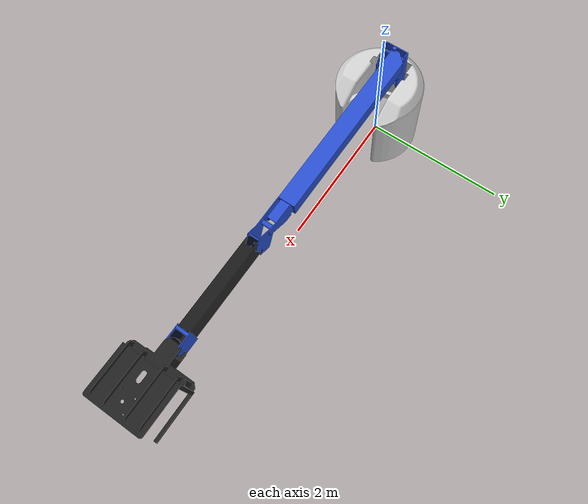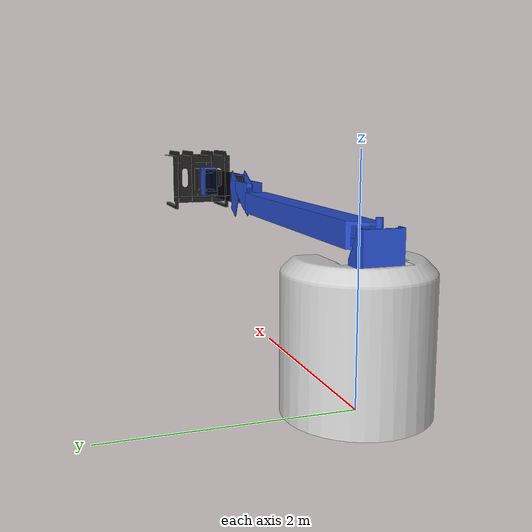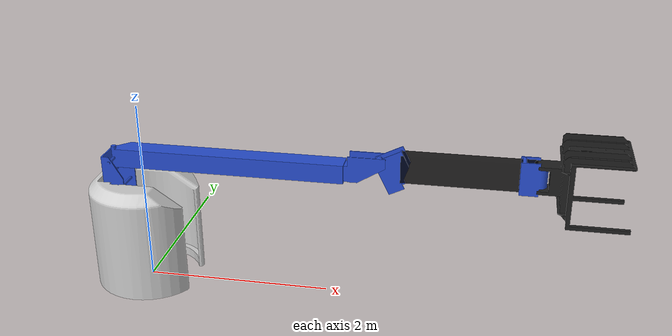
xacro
<?xml version="1.0"?>
<robot name="robospect" xmlns:xacro="http://www.ros.org/wiki/xacro">

	<!-- Imported elements -->

	<!-- First we import all posible elements defined in the urdf.xacro files. All these elements are defined as macro:xacros -->

	<!-- Import Robospect Crane -->
	<xacro:include filename="$(find robospect_description)/urdf/bases/robospect_crane.urdf.xacro" />
	<link name="base_footprint">
	  <visual>
		  <origin xyz="0 0 0" rpy="0 0 0" />
		  <geometry>
			 <box size="0.001 0.001 0.001" />
		  </geometry>
	  </visual>
	</link>

	<joint name="base_footprint_joint" type="fixed">
	  <origin xyz="0 0 0.0" rpy="0 0 0" />
	  <parent link="base_footprint"/>
	  <child link="base_link" />
	</joint>

	<!-- BASE_LINK -->
	<link name="base_link">
	</link>

	<xacro:robospect_crane parent="base_link">
		<origin xyz="0 0 0" rpy="0 0 0" />
	</xacro:robospect_crane>
	<!-- Gazebo ros control pluggins -->
	<xacro:ros_control/>

	<!-- WHEELS -->

</robot>

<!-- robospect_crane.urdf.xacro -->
<robot name="robospect" xmlns:xacro="http://www.ros.org/wiki/xacro">

  <xacro:include filename="$(find robospect_description)/urdf/bases/robospect_crane.gazebo.xacro" />
  <xacro:property name="PI" value="3.141592"/>
  <xacro:property name="joint_1_lower_limit" value="-1.57079"/>
  <xacro:property name="joint_1_upper_limit" value="1.57079"/>
  <xacro:property name="joint_2_lower_limit" value="0.0"/>
  <xacro:property name="joint_2_upper_limit" value="1.824"/>
  <xacro:property name="joint_3_lower_limit" value="-0.03"/>
  <xacro:property name="joint_3_upper_limit" value="0.4861"/>
  <xacro:property name="joint_4_lower_limit" value="0.0"/>
  <xacro:property name="joint_4_upper_limit" value="1.523"/>
  <xacro:property name="joint_6_lower_limit" value="-1.2397"/>
  <xacro:property name="joint_6_upper_limit" value="0.8283"/>
  <xacro:property name="joint_5_lower_limit" value="0.0"/>
  <xacro:property name="joint_5_upper_limit" value="1.155"/>

  <xacro:property name="joint_5_yaw" value="0.6981"/>
  <!--xacro:property name="joint_6_pitch" value="-${joint_6_upper_limit/2.0}"/-->
  <xacro:property name="joint_6_pitch" value="1.5707"/>
  <xacro:property name="joint_7_yaw" value="0.5061"/>

  <xacro:macro name="robospect_crane" params="parent *origin">

  <!-- FIRST_JOINT -->

    <joint name="crane_first_joint" type="revolute">
      <axis xyz="0 0 1"/>
      <limit effort="1000.0" lower="${joint_1_lower_limit}" upper="${joint_1_upper_limit}" velocity="0.5"/>
      <!--origin xyz="-0.073 0 0.287" rpy="0 0 0" /-->
      <insert_block name="origin" />
      <parent link="${parent}"/>
      <child link="first_link"/>
    </joint>

    <transmission name="crane_first_joint_trans">
      <type>transmission_interface/SimpleTransmission</type>
      <joint name="crane_first_joint">
        <hardwareInterface>EffortJointInterface</hardwareInterface>
      </joint>
      <actuator name="crane_first_joint_act">
        <hardwareInterface>EffortJointInterface</hardwareInterface>
        <mechanicalReduction>1</mechanicalReduction>
      </actuator>
    </transmission>

  <!-- FIRST_LINK -->

  <link name="first_link">
    <inertial>
      <mass value="12.0" />
      <origin xyz="0 0 0" />
      <inertia  ixx="1.391" ixy="0.004"  ixz="0.0"  iyy="6.853"  iyz="0.0"  izz="6.125" />
    </inertial>
    <visual>
       <origin xyz="0 0 0" rpy="0 0 0" />
       <geometry>
	        <mesh filename="package://robospect_description/meshes/bases/robospect_first.dae" scale="1 1 1"/>
       </geometry>
       <material name="grey">
          <color rgba="0.8 0.8 0.8 1"/>
       </material>
    </visual>
    <collision>
       <origin xyz="0 0 0" rpy="0 0 0 " />
       <geometry>
         <mesh filename="package://robospect_description/meshes/bases/robospect_first.dae" scale="1 1 1"/>
       </geometry>
    </collision>
  </link>

  <gazebo reference="first_link">
    <material>Gazebo/White</material>
  </gazebo>

	<!-- SECOND_JOINT -->

    <joint name="crane_second_joint" type="prismatic">
      <axis xyz="0 0 1"/>
      <limit effort="50000.0" lower="${joint_2_lower_limit}" upper="${joint_2_upper_limit}" velocity="0.25"/>
      <origin xyz="-0.305 0 1.400" rpy="0 0 0" />
      <parent link="first_link"/>
      <child link="second_link"/>
    </joint>

    <transmission name="crane_second_joint_trans">
      <type>transmission_interface/SimpleTransmission</type>
      <joint name="crane_second_joint">
        <hardwareInterface>EffortJointInterface</hardwareInterface>
      </joint>
      <actuator name="crane_second_joint_act">
        <!-- This hardwareInterface element exists for compatibility
             with ROS Hydro. -->
        <hardwareInterface>EffortJointInterface</hardwareInterface>
        <mechanicalReduction>1</mechanicalReduction>
      </actuator>
    </transmission>

  <!-- SECOND_LINK -->

  <link name="second_link">
    <inertial>
      <mass value="10.0" />
      <origin xyz="0 0 0" />
      <inertia  ixx="1.391" ixy="0.004"  ixz="0.0"  iyy="6.853"  iyz="0.0"  izz="6.125" />
    </inertial>
    <visual>
       <origin xyz="0 0 0" rpy="0 0 0" />
       <geometry>
	        <mesh filename="package://robospect_description/meshes/bases/robospect_second.dae" scale="1 1 1"/>
       </geometry>
       <material name="blue">
       </material>
    </visual>
    <collision>
       <origin xyz="0 0 0" rpy="0 0 0 " />
       <geometry>
         <mesh filename="package://robospect_description/meshes/bases/robospect_second.dae" scale="1 1 1"/>
       </geometry>
    </collision>
  </link>

    <!-- THIRD_JOINT -->

	<joint name="crane_third_joint" type="revolute">
		<axis xyz="0 0 1"/>
		<limit effort="100000.0" lower="${joint_3_lower_limit}" upper="${joint_3_upper_limit}" velocity="0.2"/>
		<origin xyz="0 0 0" rpy="${PI/2.0} 0 0" />  <!-- height is the clearance -->
		<parent link="second_link"/>
		<child link="third_link"/>
	</joint>

	<transmission name="crane_third_joint_trans">
		<type>transmission_interface/SimpleTransmission</type>
		<joint name="crane_third_joint">
		  <hardwareInterface>EffortJointInterface</hardwareInterface>
		</joint>
		<actuator name="crane_third_joint_act">
		  <hardwareInterface>EffortJointInterface</hardwareInterface>
		  <mechanicalReduction>1</mechanicalReduction>
		</actuator>
	</transmission>

    <!-- THIRD_LINK -->

    <link name="third_link">
      <inertial>
        <mass value="2.0" />
        <origin xyz="0 0 0" rpy="${PI/2.0} 0 0"/>
        <inertia  ixx="1.391" ixy="0.004"  ixz="0.0"  iyy="6.853"  iyz="0.0"  izz="6.125" />
      </inertial>
      <visual>
         <origin xyz="0 0 0" rpy="0 0 0" />
         <geometry>
  	        <mesh filename="package://robospect_description/meshes/bases/robospect_third.dae" scale="1 1 1"/>
         </geometry>
         <material name="blue">
         </material>
      </visual>
      <collision>
         <origin xyz="0 0 0" rpy="0 0 0" />
         <geometry>
           <mesh filename="package://robospect_description/meshes/bases/robospect_third.dae" scale="1 1 1"/>
         </geometry>
      </collision>
    </link>

	<!-- FOURTH_JOINT -->
	<joint name="crane_fourth_base_joint" type="fixed">
		<axis xyz="0 0 1"/>
		<!--origin xyz="2.8 0 0.04" rpy="0 0 0" /-->
		<origin xyz="0.774 0 -0.087" rpy="0 ${PI/2} 0" />
		<parent link="third_link"/>
		<child link="fourth_base_link"/>
	</joint>
	<link name="fourth_base_link">
		<inertial>
			<mass value="2.0" />
			<origin xyz="0 0 0"/>
			<inertia  ixx="1.391" ixy="0.004"  ixz="0.0"  iyy="6.853"  iyz="0.0"  izz="6.125" />
		</inertial>
	</link>

	<joint name="crane_fourth_joint" type="prismatic">
		<axis xyz="0 0 1"/>
		<limit effort="1000.0" lower="${joint_4_lower_limit}" upper="${joint_4_upper_limit}" velocity="0.5"/>
		<!--origin xyz="2.8 0 0.04" rpy="0 0 0" /-->
		<origin xyz="0.0 0 0.0" rpy="0 0 -${PI/2}" />
		<parent link="fourth_base_link"/>
		<child link="fourth_link"/>
	</joint>

	<transmission name="crane_fourth_joint_trans">
		<type>transmission_interface/SimpleTransmission</type>
		<joint name="crane_fourth_joint">
		  <hardwareInterface>EffortJointInterface</hardwareInterface>
		</joint>
		<actuator name="crane_fourth_joint_act">
		  <hardwareInterface>EffortJointInterface</hardwareInterface>
		  <mechanicalReduction>1</mechanicalReduction>
		</actuator>
	</transmission>

    <!-- FOURTH_LINK -->

    <link name="fourth_link">
      <inertial>
        <mass value="2.0" />
        <origin xyz="0 0 0"/>
        <inertia  ixx="1.391" ixy="0.004"  ixz="0.0"  iyy="6.853"  iyz="0.0"  izz="6.125" />
      </inertial>
      <visual>
         <origin xyz="0 0 0" rpy="0 -${PI/2} 0" />
         <geometry>
            <mesh filename="package://robospect_description/meshes/bases/robospect_fourth.dae" scale="1 1 1"/>
         </geometry>
         <material name="blue">
         </material>
      </visual>
      <collision>
         <origin xyz="0 0 0" rpy="0 -${PI/2} 0 " />
         <geometry>
           <mesh filename="package://robospect_description/meshes/bases/robospect_fourth.dae" scale="1 1 1"/>
         </geometry>
      </collision>
    </link>

    <!-- FIFTH_JOINT -->

      <joint name="crane_fifth_joint" type="revolute">
        <axis xyz="0 0 -1"/>
        <!--limit effort="1000.0" lower="${joint_5_lower_limit}" upper="${joint_5_upper_limit}" velocity="0.5"/-->
        <limit effort="1000.0" lower="-${PI/2}" upper="${PI/2}" velocity="0.5"/>
        <origin xyz="-0.132 0.0 2.084" rpy="-${PI/2.0} 0.0 0" />
        <!--origin xyz="-0.132 0.0 2.084" rpy="-${PI/2.0} ${joint_5_yaw - joint_5_upper_limit} 0" /-->
        <parent link="fourth_link"/>
        <child link="fifth_link"/>
        <mimic joint="crane_third_joint" multiplier="-1.0" offset="0.0"/>
      </joint>

      <transmission name="crane_fifth_joint_trans">
        <type>transmission_interface/SimpleTransmission</type>
        <joint name="crane_fifth_joint">
          <hardwareInterface>EffortJointInterface</hardwareInterface>
        </joint>
        <actuator name="crane_fifth_joint_act">

          <hardwareInterface>EffortJointInterface</hardwareInterface>
          <mechanicalReduction>1</mechanicalReduction>
        </actuator>
      </transmission>

    <!-- FIFTH_LINK -->

    <link name="fifth_link">
      <inertial>
        <mass value="2.0" />
        <origin xyz="0 0 0" />
        <inertia  ixx="1.391" ixy="0.004"  ixz="0.0"  iyy="6.853"  iyz="0.0"  izz="6.125" />
      </inertial>
      <visual>
         <origin xyz="0 0 0" rpy="${PI/2.0} 0 -0.4569" />
         <geometry>
            <mesh filename="package://robospect_description/meshes/bases/robospect_fifth.dae" scale="1 1 1"/>
         </geometry>
         <material name="blue">
         </material>
      </visual>
      <collision>
         <origin xyz="0 0 0" rpy="${PI/2.0} 0 -0.4569" />
         <!--origin xyz="0 0 0" rpy="${PI/2.0} 0 0" /-->
         <geometry>
           <mesh filename="package://robospect_description/meshes/bases/robospect_fifth.dae" scale="1 1 1"/>
         </geometry>
      </collision>
    </link>

	<!-- SIXTH_JOINT -->
      <joint name="crane_sixth_joint" type="revolute">
        <axis xyz="0 0 -1"/>
        <limit effort="1000.0" lower="${joint_6_lower_limit}" upper="${joint_6_upper_limit}" velocity="0.5"/>
        <!--origin xyz="0.0 0.0 0.252" rpy="0 ${PI/2.0} 0" /-->
        <origin xyz="-0.11266 -0.23432 0" rpy="0 0 -${PI/2}" />
        <!--origin xyz="0 -0.252 0" rpy="0 0 0" /-->
        <parent link="fifth_link"/>
        <child link="sixth_link"/>
      </joint>

      <transmission name="crane_sixth_joint_trans">
        <type>transmission_interface/SimpleTransmission</type>
        <joint name="crane_sixth_joint">
          <hardwareInterface>EffortJointInterface</hardwareInterface>
        </joint>
        <actuator name="crane_sixth_joint_act">
          <hardwareInterface>EffortJointInterface</hardwareInterface>
          <mechanicalReduction>1</mechanicalReduction>
        </actuator>
      </transmission>

    <!-- SIXTH_LINK -->
    <link name="sixth_link">
      <inertial>
        <mass value="1.0" />
        <origin xyz="0 0 0" />
        <inertia  ixx="1.391" ixy="0.004"  ixz="0.0"  iyy="6.853"  iyz="0.0"  izz="6.125" />
      </inertial>
       <visual>
         <origin xyz="0.685 0.15 0" rpy="0 0 0" />
         <geometry>
			<box size="1.370 0.3 0.15" />
		</geometry>
         <material name="Gray">
			<color rgba="0 0 0 0.8"/>
		</material>
      </visual>
      <collision>
         <origin xyz="0.685 0.15 0" rpy="0 0 0" />
         <geometry>
			<box size="1.370 0.3 0.15" />
		</geometry>
      </collision>
    </link>

    <!-- SEVENTH_JOINT -->

      <joint name="crane_seventh_joint" type="revolute">
        <axis xyz="0 0 1"/>
        <limit effort="1000.0" lower="-1.57" upper="1.57" velocity="0.5"/>
        <!--origin xyz="1.239 0 0" rpy="0 0 ${joint_7_yaw -PI/2.0}" /-->
        <origin xyz="1.239 0 0" rpy="0 0 0" />
        <parent link="sixth_link"/>
        <child link="seventh_link"/>
        <mimic joint="crane_sixth_joint" multiplier="1.0" offset="0.0"/>
      </joint>

      <transmission name="crane_seventh_joint_trans">
        <type>transmission_interface/SimpleTransmission</type>
        <joint name="crane_seventh_joint">
          <hardwareInterface>EffortJointInterface</hardwareInterface>
        </joint>
        <actuator name="crane_seventh_joint_act">
          <hardwareInterface>EffortJointInterface</hardwareInterface>
          <mechanicalReduction>1</mechanicalReduction>
        </actuator>
      </transmission>

    <!-- SEVENTH_LINK -->

    <link name="seventh_link">
      <inertial>
        <mass value="1.0" />
        <origin xyz="0 0 0" />
        <inertia  ixx="1.391" ixy="0.004"  ixz="0.0"  iyy="6.853"  iyz="0.0"  izz="6.125" />
      </inertial>
      <visual>
         <origin xyz="0 0 0" rpy="${PI/2.0} 0 0" />
         <geometry>
            <mesh filename="package://robospect_description/meshes/bases/robospect_seventh.dae" scale="1 1 1"/>
         </geometry>
         <material name="blue">
         </material>
      </visual>
      <collision>
         <origin xyz="0 0 0" rpy="${PI/2.0} 0 0 " />
         <geometry>
           <mesh filename="package://robospect_description/meshes/bases/robospect_seventh.dae" scale="1 1 1"/>
         </geometry>
      </collision>
    </link>

     <!-- TIP_JOINT -->

      <joint name="crane_tip_joint" type="revolute">
        <axis xyz="0 0 1"/>
        <limit effort="1000.0" lower="-${90 * PI / 180}" upper="${90 * PI / 180}" velocity="0.5"/>
        <!--origin xyz="0.164 0.0 -0.155" rpy="0 0 0" /-->
        <origin xyz="0.164 0.0 0.0" rpy="${PI/2.0} 0 0" />
        <parent link="seventh_link"/>
        <child link="tip_link"/>
      </joint>

      <transmission name="crane_tip_joint_trans">
        <type>transmission_interface/SimpleTransmission</type>
        <joint name="crane_tip_joint">
          <hardwareInterface>EffortJointInterface</hardwareInterface>
        </joint>
        <actuator name="crane_tip_joint_act">
          <hardwareInterface>EffortJointInterface</hardwareInterface>
          <mechanicalReduction>1</mechanicalReduction>
        </actuator>
      </transmission>

    <!-- TIP_LINK -->

    <link name="tip_link">
      <inertial>
        <mass value="1.0" />
        <origin xyz="0 0 0" />
        <inertia  ixx="1.391" ixy="0.004"  ixz="0.0"  iyy="6.853"  iyz="0.0"  izz="6.125" />
      </inertial>
      <visual>
         <origin xyz="0 0 -0.155" rpy="0 0 0" />
         <geometry>
            <mesh filename="package://robospect_description/meshes/bases/robospect_head.dae" scale="1 1 1"/>
         </geometry>
         <material name="black">
         </material>
      </visual>
      <collision>
         <origin xyz="0 0 -0.155" rpy="0 0 0 " />
         <geometry>
           <mesh filename="package://robospect_description/meshes/bases/robospect_head.dae" scale="1 1 1"/>
         </geometry>
      </collision>
    </link>

  </xacro:macro>

</robot>
